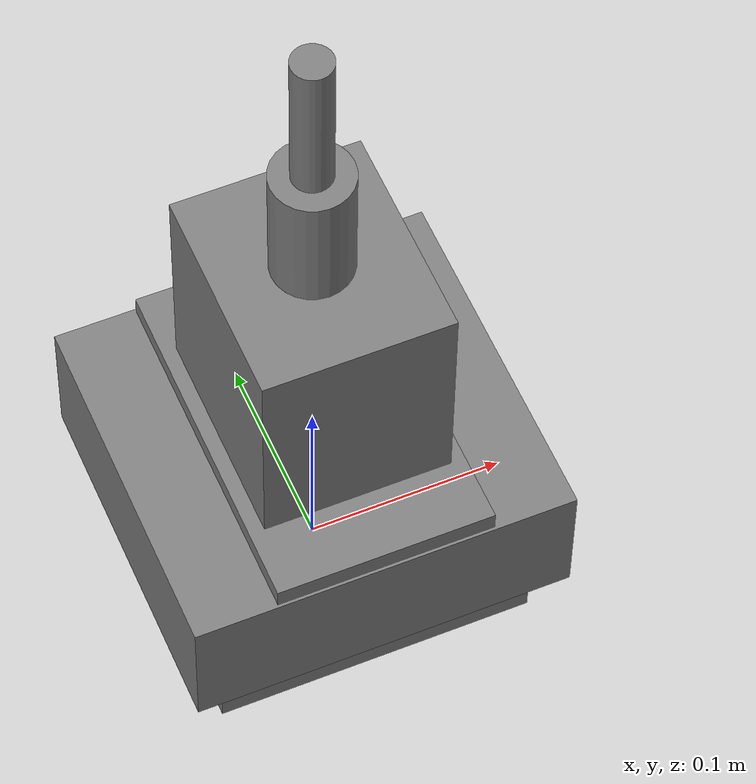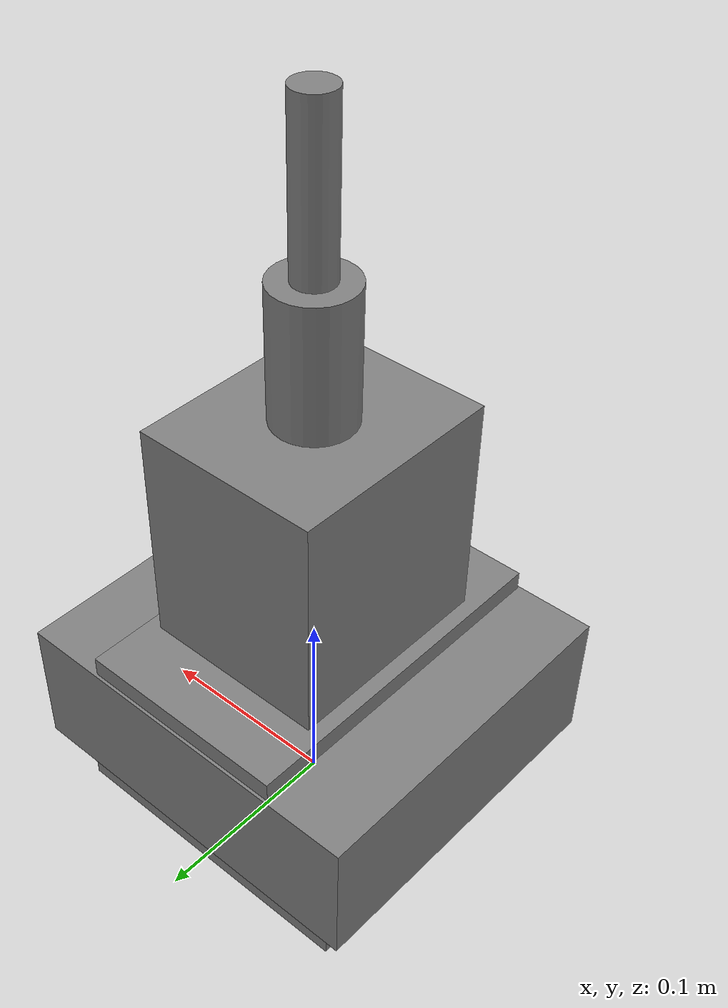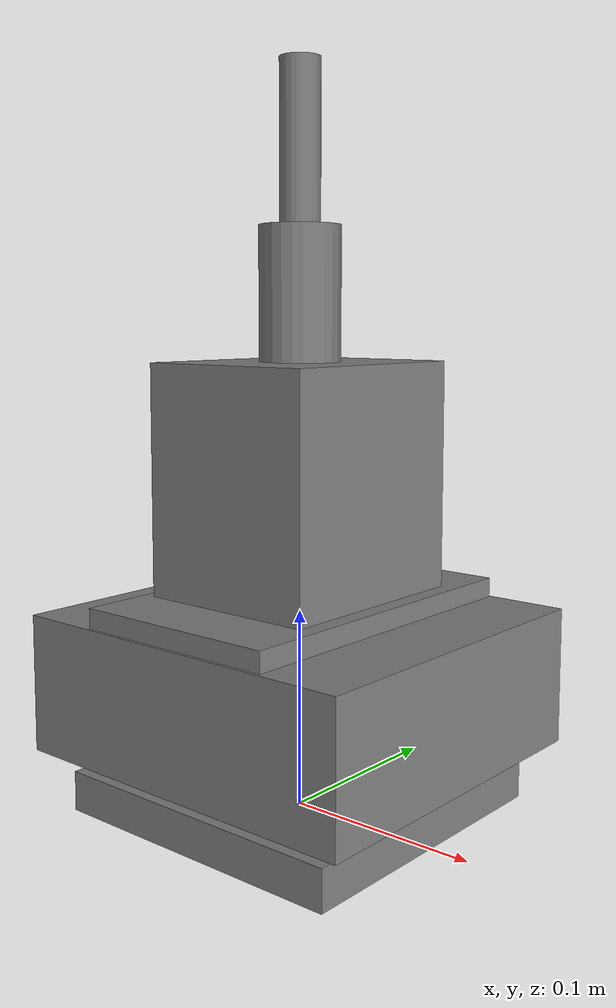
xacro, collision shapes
<?xml version="1.0" ?>
<robot name="cabka_tool" xmlns:xacro="http://wiki.ros.org/xacro">
  <xacro:include filename="$(find acroba_resources)/urdf/cabka_tool_macro.xacro"/>
  <xacro:cabka_tool prefix=""/>
  <link name="world"/>
  <joint name="joint_world" type="fixed">
    <origin rpy="0 0 0" xyz="0 0 0"/>
    <parent link="world"/>
    <child link="base_tool"/>
  </joint>
</robot>

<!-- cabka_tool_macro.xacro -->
<robot xmlns:xacro="http://wiki.ros.org/xacro">

   <xacro:macro name="cabka_tool" params="prefix">

    <link name="${prefix}tool_base_body" >
      <visual>
        <origin xyz="0.0 0.0 0.0" rpy="0 0 0" />
        <geometry>
            <mesh filename="package://acroba_resources/meshes/miscellaneous/cabka_tool/cabka_tool_base.stl" scale="0.001 0.001 0.001"/>
        </geometry>
        <material name="Grey">
          <color rgba="0.5 0.5 0.5 1.0"/>
        </material>
      </visual>
      <collision>
        <origin xyz="0.0 0.077 0.0" rpy="0 0 0" />
        <geometry>
            <box size="0.160 0.02 0.159"/>
        </geometry>
      </collision>

     <!-- unknown intertia-->

    </link>

    <link name="${prefix}tool_body" >
      <visual>
        <origin xyz="0.0 0.0 0.0" rpy="0 0 0" />
        <geometry>
            <mesh filename="package://acroba_resources/meshes/miscellaneous/cabka_tool/cabka_slider_1.stl" scale="0.001 0.001 0.001"/>
        </geometry>
        <material name="Grey">
          <color rgba="0.5 0.5 0.5 1.0"/>
        </material>
      </visual>
      <collision>
        <origin xyz="0.0 0.05 0.0" rpy="0 0 0" />
        <geometry>
            <box size="0.166 0.032 0.13"/>
        </geometry>
      </collision>

     <!-- unknown intertia-->

    </link>

    <link name="${prefix}slider_1" >
      <visual>
        <origin xyz="0.0 0.0 0.0" rpy="0 0 0" />
        <geometry>
            <mesh filename="package://acroba_resources/meshes/miscellaneous/cabka_tool/cabka_slider_2.stl" scale="0.001 0.001 0.001"/>
        </geometry>
        <material name="Grey">
          <color rgba="0.5 0.5 0.5 1.0"/>
        </material>
      </visual>
      <collision>
        <origin xyz="0.0 0.022 0.0" rpy="0 0 0" />
        <geometry>
            <box size="0.192 0.069 0.181"/>
        </geometry>
      </collision>

     <!-- unknown intertia-->

    </link>

    <link name="${prefix}slider_2" >
      <visual>
        <origin xyz="0.0 0.0 0.0" rpy="0 0 0" />
        <geometry>
            <mesh filename="package://acroba_resources/meshes/miscellaneous/cabka_tool/cabka_tool_body.stl" scale="0.001 0.001 0.001"/>
        </geometry>
        <material name="Grey">
          <color rgba="0.5 0.5 0.5 1.0"/>
        </material>
      </visual>
      <collision>
        <origin xyz="0 -0.005 0" rpy="0 0 0" />
        <geometry>
            <box size="0.109 0.035 0.178"/>
        </geometry>
      </collision>
      <collision>
        <origin xyz="0 -0.08 0" rpy="0 0 0" />
        <geometry>
            <box size="0.094 0.114 0.11"/>
        </geometry>
      </collision>
      <collision>
        <origin xyz="0 -0.164 0" rpy="1.5707 0 0" />
        <geometry>
            <cylinder radius="0.02" length="0.077"/>
        </geometry>
      </collision>
      <collision>
        <origin xyz="0 -0.235 0" rpy="1.5707 0 0" />
        <geometry>
            <cylinder radius="0.01" length="0.091"/>
        </geometry>
      </collision>
     <!-- unknown intertia-->

    </link>

    <joint name="${prefix}joint_base_body" type="fixed">
      <parent link="${prefix}tool_base_body" />
      <child link = "${prefix}tool_body" />
      <origin xyz="0.0 0.0 0.0 " rpy="0.0 0.0 0.0" />
    </joint>

    <joint name="${prefix}joint_slider_x" type="prismatic">
      <parent link="${prefix}tool_body" />
      <child link = "${prefix}slider_1" />
      <origin xyz="0.0 0.0 0.0 " rpy="0.0 0.0 0.0" />
      <axis xyz="1 0 0"/>
      <limit effort="50" lower="-0.048" upper="0.048" velocity="10"/>
    </joint>

    <joint name="${prefix}joint_slider_
    z" type="prismatic">
      <parent link="${prefix}slider_1" />
      <child link = "${prefix}slider_2" />
      <origin xyz="0.0 0.0 0.0 " rpy="0.0 0.0 0.0" />
      <axis xyz="0 0 1"/>
      <limit effort="50" lower="-0.048" upper="0.048" velocity="10"/>
    </joint>

    <link name="${prefix}base_tool"/>
    <joint name="${prefix}joint_base_tool" type="fixed">
      <parent link="${prefix}base_tool" />
      <child link = "${prefix}tool_base_body" />
      <origin xyz="0.0 0.0 0.087 " rpy="-1.570796 0.0 0.0" />
    </joint>

    <link name="${prefix}end_tool"/>
   <joint name="${prefix}joint_end_tool" type="fixed">
      <parent link="${prefix}slider_2" />
      <child link = "${prefix}end_tool" />
      <origin xyz="0.0 -0.280 0.0" rpy="1.570796 0.0 0.0" />
    </joint>

    <disable_collision link1="${prefix}tool_base_body" link2="${prefix}tool_body"/>
    <disable_collision link1="${prefix}slider_1" link2="${prefix}slider_2"/>
    <disable_collision link1="${prefix}slider_1" link2="${prefix}tool_body"/>
   </xacro:macro>
</robot>
